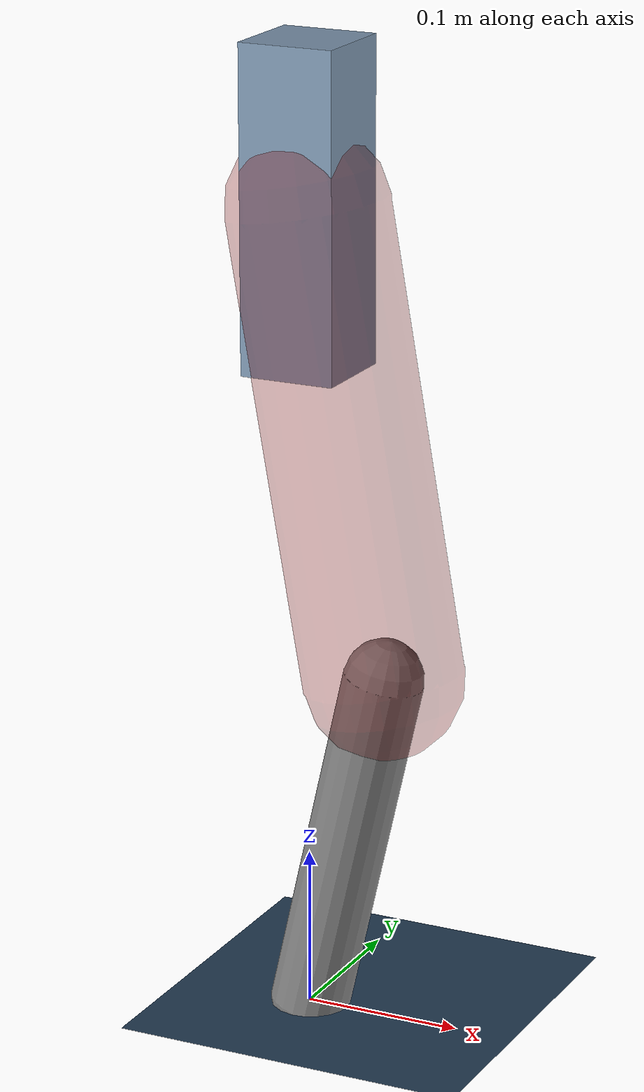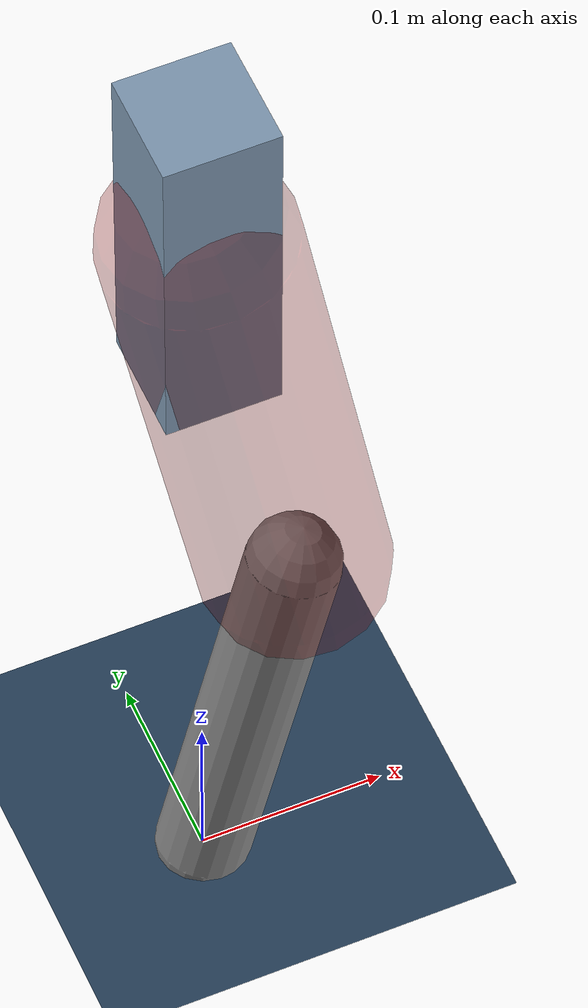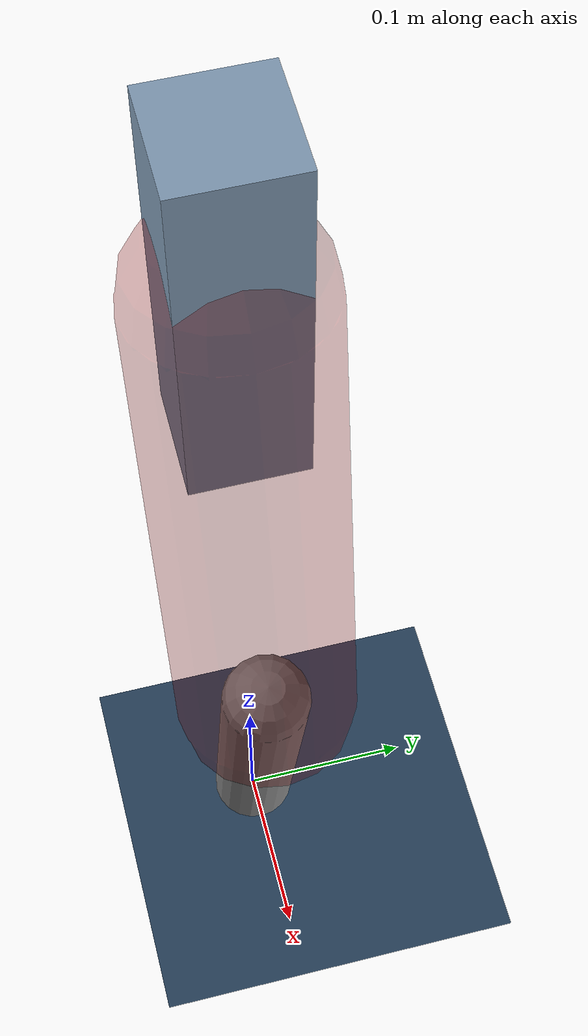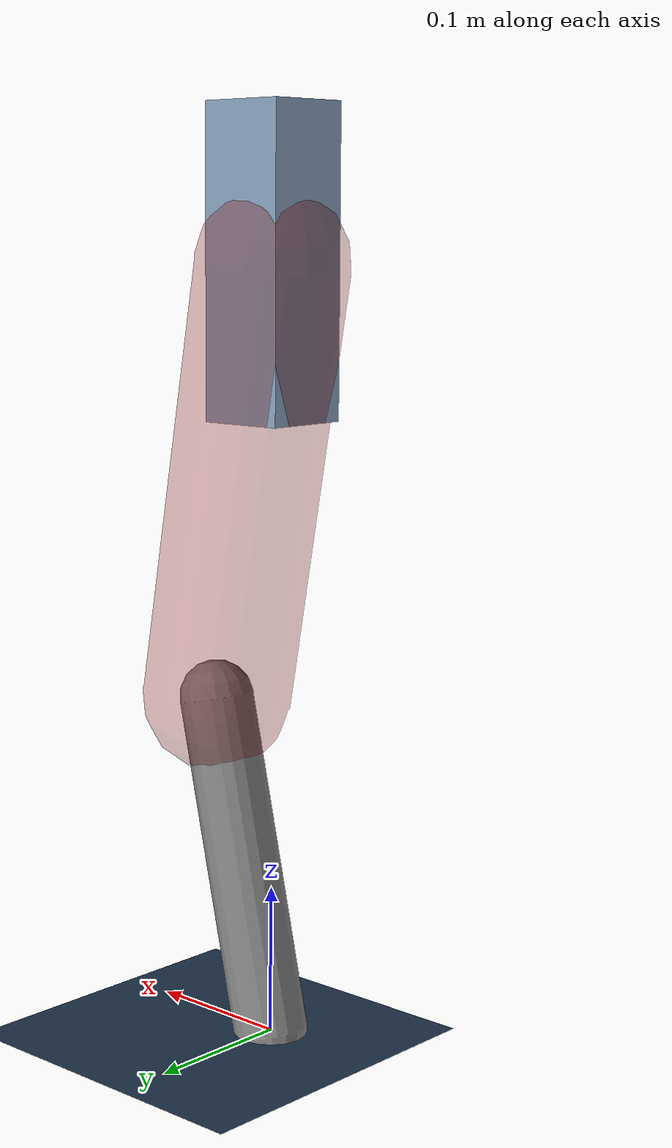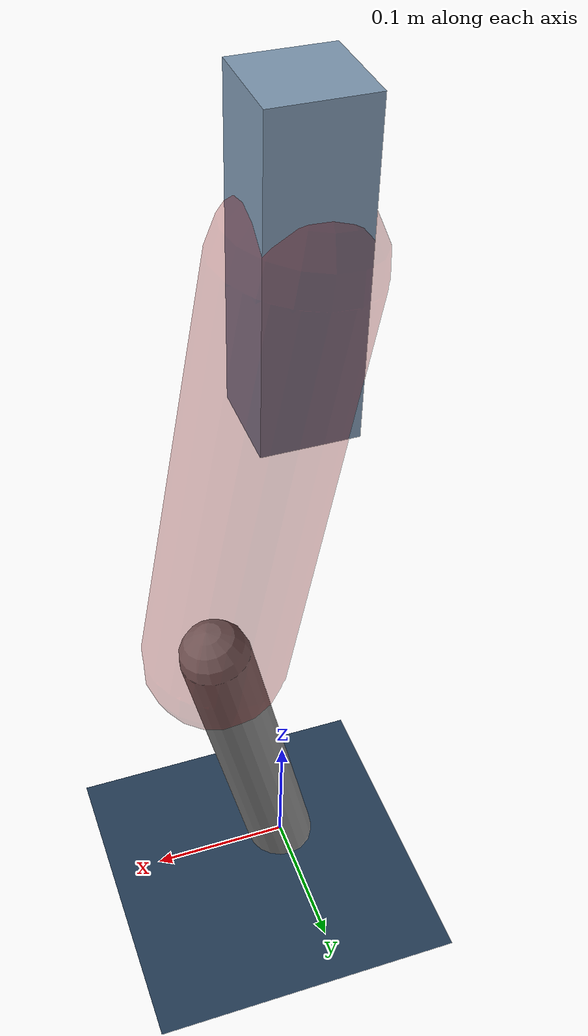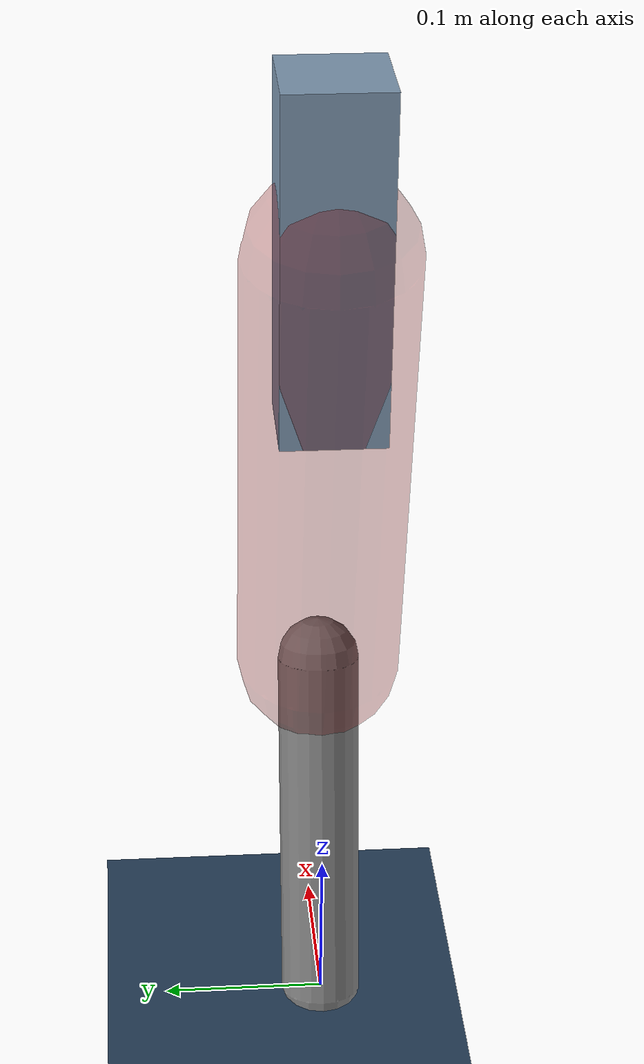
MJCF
<mujoco model="Hopper2D">
	<compiler inertiafromgeom="true" angle="radian" />
	<option timestep="0.001" integrator="implicit" cone="elliptic" solver="Newton" tolerance="1e-10" />

	<default>
		<geom contype="1" conaffinity="1" condim="3" friction="2 0.005 0.0001" solref="0.005 1" />
		<joint limited="true" damping="0.1" />
	</default>

	<asset>
		<texture name="skybox" type="skybox" builtin="gradient" rgb1=".4 .6 .8" rgb2="0 0 0" width="800" height="800" />
		<texture name="grid" type="2d" builtin="checker" rgb1=".1 .2 .3" rgb2=".2 .3 .4" width="300" height="300" mark="edge" markrgb=".2 .3 .4" />
		<material name="ground" texture="grid" texrepeat="1 1" texuniform="true" reflectance="0.1" />
		<material name="leg" rgba="0.5 0.6 0.7 1" />
	</asset>

	<worldbody>

		<geom name="floor" type="plane" size="5 5 0.25" material="ground" />

		<light directional="false" diffuse="0.8 0.8 0.8" specular="0.3 0.3 0.3" pos="0 0 2" dir="0 0 -1" />
		<light mode="targetbodycom" target="base" directional="false" diffuse="0.8 0.8 0.8" specular="0.3 0.3 0.3" pos="0 0 2" dir="0 0 -1" />

		<camera name="fixed" pos="0 -2 1" xyaxes="1 0 0 0 0 1" />
		<camera name="tracking" mode="trackcom" pos="0 -3 1" />

		<body name="root" pos="0 0 0.5114129997921559">
			<joint name="slide_x" type="slide" axis="1 0 0" range="-100 100" />
			<joint name="slide_z" type="slide" axis="0 0 1" range="0 10" />

			<body name="base" pos="0 0 0">
				<geom name="torso" type="box" size="0.03 0.03 0.1" mass="2.638" material="leg" />

				<body name="link1" pos="0 0 0" euler="0 1.397571363613876 0">
					<joint type="hinge" axis="0 -1 0" pos="0 0 0" name="hinge1" limited="true" range="-3.14 3.14" stiffness="0" damping="0.1" />
					<geom name="thigh" type="capsule" fromto="0 0 0 0.29252247767322587 0 0" size="0.05" rgba="0.5 0 0 0.3" mass="0.9686106897177098" />

					<body name="link2" pos="0.29252247767322587 0 0" euler="0 0.3953226772208481 0">
						<joint type="hinge" axis="0 -1 0" pos="0 0 0" name="hinge2" limited="true" range="-3.14 3.14" stiffness="0" damping="0.1" />
						<geom name="shank" type="capsule" fromto="0 0 0 0.22889052211893005 0 0" size="0.025" mass="0.42510146990703707" />

					</body>
				</body>
			</body>
		</body>
	</worldbody>

	<actuator>
		<motor name="torque1" joint="hinge1" ctrlrange="-95.11274139072128 95.11274139072128" ctrllimited="true" gear="1" />
		<motor name="torque2" joint="hinge2" ctrlrange="-65.29383891813673 65.29383891813673" ctrllimited="true" gear="1" />
	</actuator>
</mujoco>
